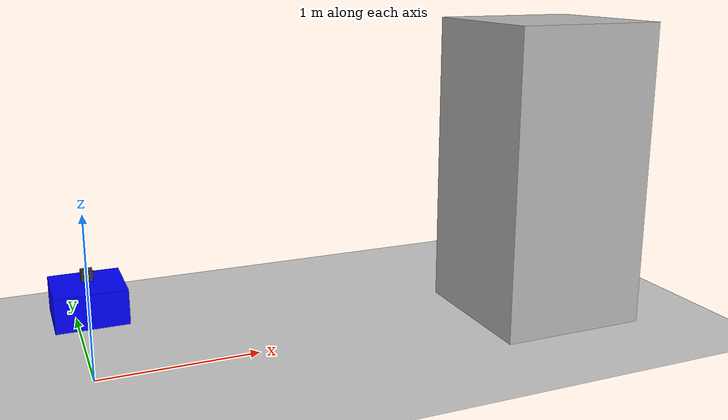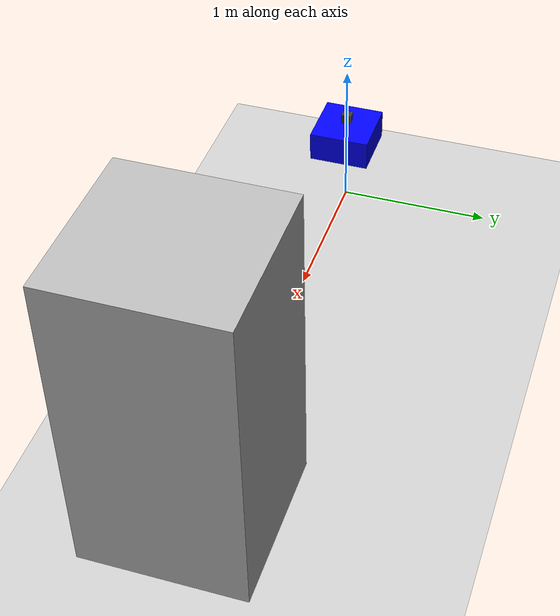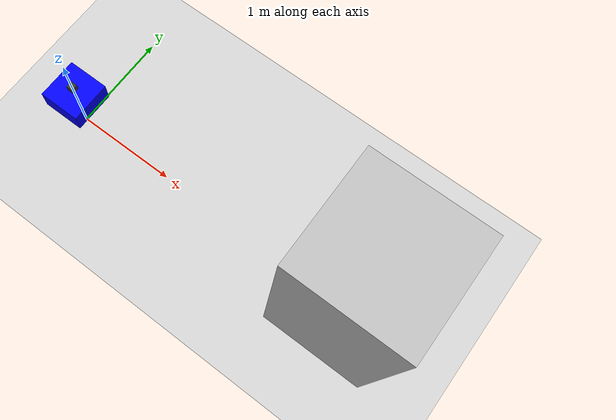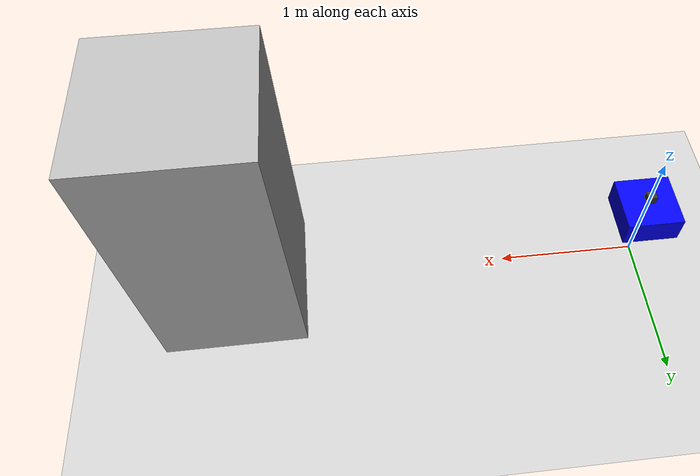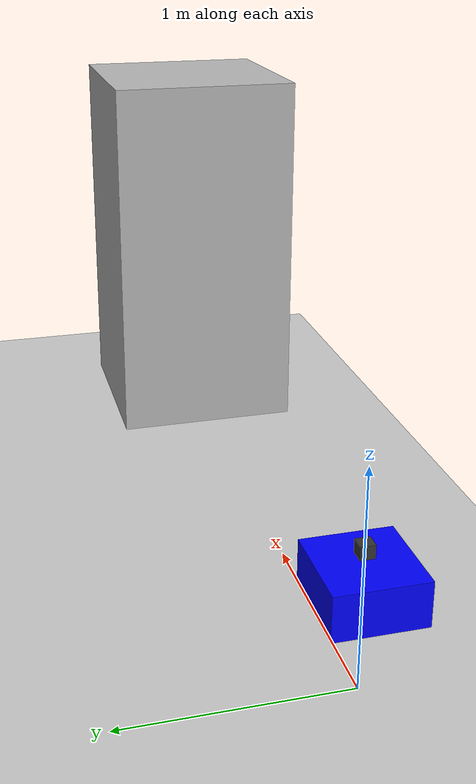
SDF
<?xml version="1.0"?>
<sdf version="1.9">
  <world name="lidar_world">
    <gravity>0 0 -9.8</gravity>

    <!-- Physics plugin -->
    <plugin filename="gz-sim-physics-system" name="gz::sim::systems::Physics">
    </plugin>

    <!-- Scene manager plugin -->
    <plugin filename="gz-sim-scene-broadcaster-system" name="gz::sim::systems::SceneBroadcaster">
    </plugin>

    <!-- Sensors plugin -->
    <plugin filename="gz-sim-sensors-system" name="gz::sim::systems::Sensors">
      <render_engine>ogre</render_engine>
    </plugin>

    <!-- User commands (transform controls) -->
    <plugin filename="gz-sim-user-commands-system" name="gz::sim::systems::UserCommands">
    </plugin>

    <!-- Add some lighting -->
    <light name="sun" type="directional">
      <cast_shadows>true</cast_shadows>
      <pose>0 0 10 0 0 0</pose>
      <diffuse>1 1 1 1</diffuse>
      <specular>0.5 0.5 0.5 1</specular>
      <direction>-0.5 0.1 -0.9</direction>
    </light>

    <!-- Add ground plane -->
    <model name="ground_plane">
      <static>true</static>
      <link name="link">
        <collision name="collision">
          <geometry>
            <plane>
              <normal>0 0 1</normal>
              <size>100 100</size>
            </plane>
          </geometry>
        </collision>
        <visual name="visual">
          <geometry>
            <plane>
              <normal>0 0 1</normal>
              <size>100 100</size>
            </plane>
          </geometry>
          <material>
            <ambient>0.8 0.8 0.8 1</ambient>
            <diffuse>0.8 0.8 0.8 1</diffuse>
            <specular>0.8 0.8 0.8 1</specular>
          </material>
        </visual>
      </link>
    </model>

    <!-- Spawn our lidar_bot at origin -->
    <include>
      <name>lidar_bot</name>
      <uri>file:///home/leonciao/lidar_ws/src/lidar_ign_demo/models/lidar_bot</uri>
      <pose>0 0 0.5 0 0 0</pose>
    </include>

    <!-- Add a simple box to scan -->
    <model name="box_target">
      <pose>3 0 1 0 0 0</pose>
      <link name="link">
        <visual name="visual">
          <geometry>
            <box>
              <size>1 1 2</size>
            </box>
          </geometry>
        </visual>
        <collision name="collision">
          <geometry>
            <box>
              <size>1 1 2</size>
            </box>
          </geometry>
        </collision>
      </link>
    </model>
  </world>
</sdf>

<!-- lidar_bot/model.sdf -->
<sdf version="1.9">
  <model name="lidar_bot">
    <pose>0 0 0 0 0 0</pose>

    <!-- Simple base link -->
    <link name="base_link">
      <inertial>
        <mass>1.0</mass>
        <inertia>
          <ixx>0.1</ixx>
          <iyy>0.1</iyy>
          <izz>0.1</izz>
        </inertia>
      </inertial>

      <!-- Robot base visual -->
      <visual name="base_visual">
        <geometry>
          <box>
            <size>0.4 0.4 0.2</size>
          </box>
        </geometry>
        <material>
          <diffuse>0 0 1 1</diffuse>
        </material>
      </visual>

      <collision name="base_collision">
        <geometry>
          <box>
            <size>0.4 0.4 0.2</size>
          </box>
        </geometry>
      </collision>
    </link>

    <!-- Lidar link (Livox Mid360) -->
    <link name="lidar_link">
      <pose>0 0 0.15 0 0 0</pose>

      <!-- Livox Mid360 visual (compact cube shape 65x65x60mm) -->
      <visual name="lidar_visual">
        <geometry>
          <box>
            <size>0.065 0.065 0.060</size>
          </box>
        </geometry>
        <material>
          <diffuse>0.2 0.2 0.2 1</diffuse>
        </material>
      </visual>

      <!-- Livox Mid360 3D LiDAR sensor -->
      <sensor name="livox_mid360" type="gpu_lidar">
        <pose>0 0 0.03 0 0 0</pose>
        <update_rate>10</update_rate>
        <always_on>1</always_on>
        <visualize>true</visualize>

        <lidar>
          <scan>
            <!-- 360° horizontal coverage -->
            <horizontal>
              <samples>180</samples>  <!-- 2° resolution -->
              <resolution>1</resolution>
              <min_angle>-3.14159</min_angle>
              <max_angle>3.14159</max_angle>
            </horizontal>

            <!-- 59° vertical FOV (-7° to +52°) -->
            <vertical>
              <samples>16</samples>  <!-- 1° vertical resolution -->
              <resolution>1</resolution>
              <min_angle>-0.2</min_angle>
              <max_angle>0.2</max_angle>
            </vertical>
          </scan>

          <range>
            <min>0.1</min>  <!-- 10cm min range -->
            <max>10.0</max>  <!-- 40m max range -->
            <resolution>0.05</resolution>  <!-- 5cm precision -->
          </range>

          <!-- Livox Mid360 noise characteristics -->
          <noise>
            <type>gaussian</type>
            <mean>0.0</mean>
            <stddev>0.02</stddev>  <!-- 2cm standard deviation -->
          </noise>
        </lidar>
      </sensor>
    </link>

    <!-- Fix lidar to base -->
    <joint name="lidar_joint" type="fixed">
      <parent>base_link</parent>
      <child>lidar_link</child>
    </joint>
  </model>
</sdf>
